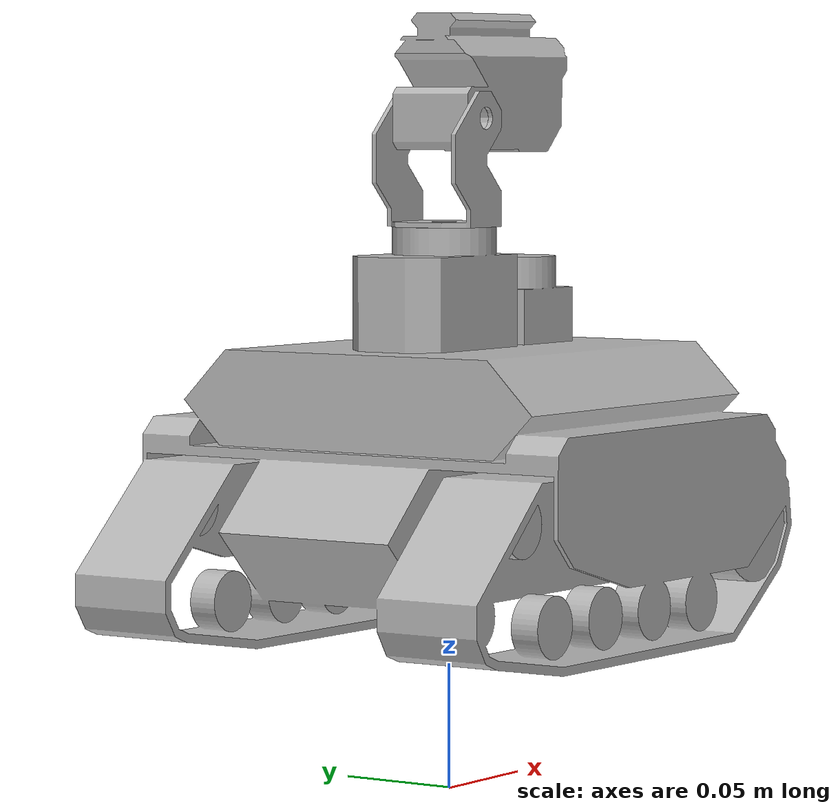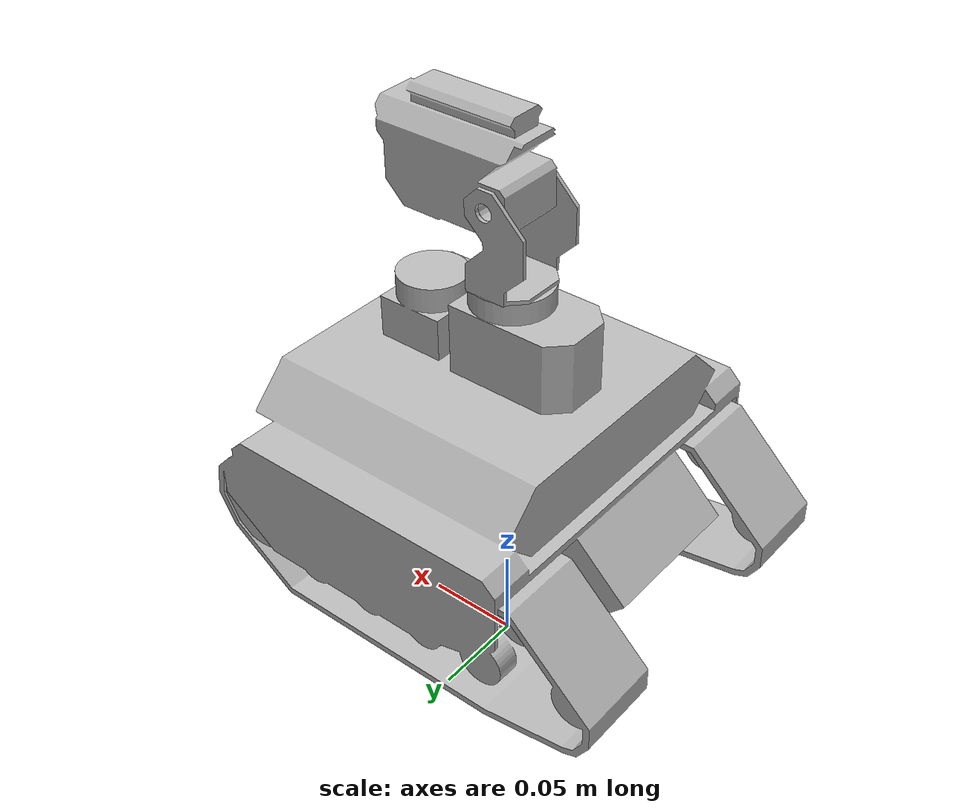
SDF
<?xml version='1.0'?>
<sdf version='1.5'>
  <model name='ugv_beast'>
   <pose>0.0 0.0 0.0 0.0 0.0 0</pose>

  <link name='base_footprint'/>

  <link name='base_link'>
    <inertial>
      <pose relative_to='base_joint'>0 0 0 0 0 0</pose>
      <mass>2.78375064359473</mass>
      <inertia>
        <ixx>0.00651567554169617</ixx>
        <ixy>-5.86655425789789E-13</ixy>
        <ixz>3.77886436056975E-05</ixz>
        <iyy>0.00933991752413667</iyy>
        <iyz>-2.53116742521487E-11</iyz>
        <izz>0.0121583506563461</izz>
       </inertia>
    </inertial>
    <visual name='base_link_visual'>
      <pose relative_to='base_joint'>0 0 0 0 0 0</pose>
      <geometry>
          <mesh>
            <scale>1 1 1</scale>
            <uri>model://ugv_description/meshes/ugv_beast/base_link.stl</uri>
          </mesh>
      </geometry>
    </visual>
    <collision name='base_link_collision'>
      <pose relative_to='base_joint'>0 0 0 0 0 0</pose>
      <geometry>
          <mesh>
            <scale>1 1 1</scale>
            <uri>model://ugv_description/meshes/ugv_beast/base_link.stl</uri>
          </mesh>
      </geometry>
    </collision>
  </link>

  <link name='base_imu_link'>
    <pose relative_to='imu_joint'>0 0 0 0 0 0</pose>
     <sensor name='ugv_imu' type='imu'>
        <always_on>true</always_on>
        <update_rate>20</update_rate>
         <imu>
          <angular_velocity>
            <x>
              <noise type='gaussian'>
                <mean>0.0</mean>
                <stddev>2e-4</stddev>
              </noise>
            </x>
            <y>
              <noise type='gaussian'>
                <mean>0.0</mean>
                <stddev>2e-4</stddev>
              </noise>
            </y>
            <z>
              <noise type='gaussian'>
                <mean>0.0</mean>
                <stddev>2e-4</stddev>
              </noise>
            </z>
          </angular_velocity>
          <linear_acceleration>
            <x>
              <noise type='gaussian'>
                <mean>0.0</mean>
                <stddev>1.7e-2</stddev>
              </noise>
            </x>
            <y>
              <noise type='gaussian'>
                <mean>0.0</mean>
                <stddev>1.7e-2</stddev>
              </noise>
            </y>
            <z>
              <noise type='gaussian'>
                <mean>0.0</mean>
                <stddev>1.7e-2</stddev>
              </noise>
            </z>
          </linear_acceleration>
        </imu>
        <topic>imu</topic>
        <gz_frame_id>base_imu_link</gz_frame_id>
      </sensor>
  </link>

  <link name='left_up_wheel_link'>
  <pose relative_to='left_up_wheel_link_joint'>0 0 0 0 -0 0</pose>
    <inertial>
     <pose>0 0.0155 0 0 -0 0</pose>
      <mass>0.207085933743005</mass>
      <inertia>
        <ixx>0.000116541923504163</ixx>
        <ixy>-1.59309191113245E-55</ixy>
        <ixz>-3.43238458333891E-37</ixz>
        <iyy>0.000170742352371108</iyy>
        <iyz>-3.6165187302327E-37</iyz>
        <izz>0.000116541923504163</izz>
       </inertia>
    </inertial>
    <visual name='left_up_wheel_link_visual'>
      <pose>0 0 0 0 -0 0</pose>
      <geometry>
          <mesh>
            <scale>1 1 1</scale>
            <uri>model://ugv_description/meshes/ugv_beast/left_up_wheel_link.stl</uri>
          </mesh>
      </geometry>
    </visual>
    <collision name='left_up_wheel_link_collision'>
      <pose>0 0 0 1.5708 -0 0</pose>
      <geometry>
          <mesh>
            <scale>1 1 1</scale>
            <uri>model://ugv_description/meshes/ugv_beast/left_up_wheel_link.stl</uri>
          </mesh>
      </geometry>
    </collision>
  </link>

  <link name='left_down_wheel_link'>
  <pose relative_to='left_down_wheel_link_joint'>0 0 0 0 -0 0</pose>
    <inertial>
      <pose>0 0.006 0 0 -0 0</pose>
      <mass>0.207085933743005</mass>
      <inertia>
        <ixx>0.000116541923504163</ixx>
        <ixy>-1.59309191113245E-55</ixy>
        <ixz>-3.43238458333891E-37</ixz>
        <iyy>0.000170742352371108</iyy>
        <iyz>-3.6165187302327E-37</iyz>
        <izz>0.000116541923504163</izz>
       </inertia>
    </inertial>
    <visual name='left_down_wheel_link_visual'>
      <pose>0 0 0 0 -0 0</pose>
      <geometry>
          <mesh>
            <scale>1 1 1</scale>
            <uri>model://ugv_description/meshes/ugv_beast/left_down_wheel_link.stl</uri>
          </mesh>
      </geometry>
    </visual>
    <collision name='left_down_wheel_link_collision'>
      <pose>0 0 0 0 -0 0</pose>
      <geometry>
          <mesh>
            <scale>1 1 1</scale>
            <uri>model://ugv_description/meshes/ugv_beast/left_down_wheel_link.stl</uri>
          </mesh>
      </geometry>
    </collision>
  </link>

  <link name='right_up_wheel_link'>
  <pose relative_to='right_up_wheel_link_joint'>0 0 0 0 -0 0</pose>
    <inertial>
      <pose>0 -0.0155 0 0 -0 0</pose>
      <mass>0.207085933743005</mass>
      <inertia>
        <ixx>0.000116541923504163</ixx>
        <ixy>-1.59309191113245E-55</ixy>
        <ixz>-3.43238458333891E-37</ixz>
        <iyy>0.000170742352371108</iyy>
        <iyz>-3.6165187302327E-37</iyz>
        <izz>0.000116541923504163</izz>
       </inertia>
    </inertial>
    <visual name='right_up_wheel_link_visual'>
      <pose>0 0 0 0 -0 0</pose>
      <geometry>
          <mesh>
            <scale>1 1 1</scale>
            <uri>model://ugv_description/meshes/ugv_beast/right_up_wheel_link.stl</uri>
          </mesh>
      </geometry>
    </visual>
    <collision name='right_up_wheel_link_collision'>
      <pose>0 0 0 0 -0 0</pose>
      <geometry>
          <mesh>
            <scale>1 1 1</scale>
            <uri>model://ugv_description/meshes/ugv_beast/right_up_wheel_link.stl</uri>
          </mesh>
      </geometry>
    </collision>
  </link>

  <link name='right_down_wheel_link'>
  <pose relative_to='right_down_wheel_link_joint'>0 0 0 0 -0 0</pose>
    <inertial>
      <pose>0 -0.006 0 0 -0 0</pose>
      <mass>0.207085933743005</mass>
      <inertia>
        <ixx>0.000116541923504163</ixx>
        <ixy>-1.59309191113245E-55</ixy>
        <ixz>-3.43238458333891E-37</ixz>
        <iyy>0.000170742352371108</iyy>
        <iyz>-3.6165187302327E-37</iyz>
        <izz>0.000116541923504163</izz>
        </inertia>
    </inertial>
    <visual name='right_down_wheel_link_visual'>
      <pose>0 0 0 0 -0 0</pose>
      <geometry>
          <mesh>
            <scale>1 1 1</scale>
            <uri>model://ugv_description/meshes/ugv_beast/right_down_wheel_link.stl</uri>
          </mesh>
      </geometry>
    </visual>
    <collision name='right_down_wheel_link_collision'>
      <pose>0 0 0 0 -0 0</pose>
      <geometry>
          <mesh>
            <scale>1 1 1</scale>
            <uri>model://ugv_description/meshes/ugv_beast/right_down_wheel_link.stl</uri>
          </mesh>
      </geometry>
    </collision>
  </link>

  <link name='3d_camera_link'>
  <pose relative_to='3d_camera_link_joint'>0 0 0 0 -0 0</pose>
    <inertial>
      <pose>0 0 0 0 -0 0</pose>
      <mass>0.043316</mass>
      <inertia>
        <ixx>3.27216283333333E-05</ixx>
        <ixy>1.12259284465067E-22</ixy>
        <ixz>-1.19114008207636E-22</ixz>
        <iyy>3.87317233333333E-06</iyy>
        <iyz>-2.37303626261453E-22</iyz>
        <izz>3.09348433333333E-05</izz>
       </inertia>
    </inertial>
    <visual name='3d_camera_link_visual'>
      <pose>0 0 0 0 -0 0</pose>
      <geometry>
          <mesh>
            <scale>1 1 1</scale>
            <uri>model://ugv_description/meshes/ugv_beast/3d_camera_link.stl</uri>
          </mesh>
      </geometry>
    </visual>
    <collision name='3d_camera_link_collision'>
      <pose>0 0 0 0 -0 0</pose>
      <geometry>
          <mesh>
            <scale>1 1 1</scale>
            <uri>model://ugv_description/meshes/ugv_beast/3d_camera_link.stl</uri>
          </mesh>
      </geometry>
    </collision>

      <sensor name="camera" type="rgbd_camera">
        <pose>0 0 0 0 -0 0</pose>
        <always_on>true</always_on>
        <visualize>true</visualize>
        <update_rate>30</update_rate>
        <topic>camera</topic>
        <gz_frame_id>3d_camera_link</gz_frame_id>
        <camera name="intel_realsense_r200">
          <horizontal_fov>1.02974</horizontal_fov>
          <image>
            <width>640</width>
            <height>480</height>
            <format>R8G8B8</format>
          </image>
          <clip>
            <near>0.02</near>
            <far>300</far>
          </clip>
          <noise>
            <type>gaussian</type>
            <mean>0.0</mean>
            <stddev>0.007</stddev>
          </noise>
        </camera>
      </sensor>
  </link>

  <link name='base_lidar_link'>
  <pose relative_to='base_lidar_link_joint'>0 0 0 0 -0 0</pose>
    <inertial>
      <pose>0 0 0 0 -0 0</pose>
      <mass>0.0418000091653573</mass>
      <inertia>
        <ixx>8.26853377699878E-06</ixx>
        <ixy>-2.32283058129169E-22</ixy>
        <ixz>-3.51417304718746E-22</ixz>
        <iyy>8.26853377699876E-06</iyy>
        <iyz>2.66754484573224E-23</iyz>
        <izz>8.32524607487378E-06</izz>
       </inertia>
    </inertial>
    <visual name='base_lidar_link_visual'>
      <pose>0 0 0 0 -0 0</pose>
      <geometry>
          <mesh>
            <scale>1 1 1</scale>
            <uri>model://ugv_description/meshes/ugv_beast/base_lidar_link.stl</uri>
          </mesh>
      </geometry>
    </visual>
    <collision name='base_lidar_link_collision'>
      <pose>0 0 0 0 -0 0</pose>
      <geometry>
          <mesh>
            <scale>1 1 1</scale>
            <uri>model://ugv_description/meshes/ugv_beast/base_lidar_link.stl</uri>
          </mesh>
      </geometry>
    </collision>

    <sensor name='hls_lfcd_lds' type='gpu_lidar'>
        <always_on>true</always_on>
        <visualize>true</visualize>
        <pose>0 0 0.04 0 -0 0</pose>
        <update_rate>10</update_rate>
        <topic>scan</topic>
        <gz_frame_id>base_lidar_link</gz_frame_id>
        <lidar>
          <scan>
            <horizontal>
              <samples>360</samples>
              <resolution>1.000000</resolution>
              <min_angle>0.000000</min_angle>
              <max_angle>6.280000</max_angle>
            </horizontal>
          </scan>
          <range>
            <min>0.160000</min>
            <max>3.5</max>
            <resolution>0.015000</resolution>
          </range>
          <noise>
            <type>gaussian</type>
            <mean>0.0</mean>
            <stddev>0.01</stddev>
          </noise>
        </lidar>
      </sensor>
  </link>

  <link name='pt_base_link'>
  <pose relative_to='pt_base_link_joint'>0 0 0 0 -0 0</pose>
    <inertial>
      <pose>0 0 0 0 -0 0</pose>
      <mass>0.109518186442022</mass>
      <inertia>
        <ixx>3.30168147078049E-05</ixx>
        <ixy>-2.724587071518E-18</ixy>
        <ixz>-2.93137934608679E-06</ixz>
        <iyy>5.1580984319637E-05</iyy>
        <iyz>-6.32568066032632E-18</iyz>
        <izz>4.86101329827052E-05</izz>
       </inertia>
    </inertial>
    <visual name='pt_base_link_visual'>
      <pose>0 0 0 0 -0 0</pose>
      <geometry>
          <mesh>
            <scale>1 1 1</scale>
            <uri>model://ugv_description/meshes/ugv_beast/pt_base_link.stl</uri>
          </mesh>
      </geometry>
    </visual>
    <collision name='pt_base_link_collision'>
      <pose>0 0 0 0 -0 0</pose>
      <geometry>
          <mesh>
            <scale>1 1 1</scale>
            <uri>model://ugv_description/meshes/ugv_beast/pt_base_link.stl</uri>
          </mesh>
      </geometry>
    </collision>
  </link>

  <link name='pt_link1'>
  <pose relative_to='pt_base_link_to_pt_link1'>0 0 0 0 -0 0</pose>
    <inertial>
    <pose>-0.003381 0 0.01761 0 -0 0</pose>
      <mass>0.00710917409663916</mass>
      <inertia>
        <ixx>3.89716322571471E-06</ixx>
        <ixy>-3.20607036006508E-19</ixy>
        <ixz>2.32919366130509E-07</ixz>
        <iyy>2.4980668051168E-06</iyy>
        <iyz>-2.87650001968868E-19</iyz>
        <izz>2.60402792588347E-06</izz>
      </inertia>
    </inertial>
    <visual name='pt_link1_visual'>
      <pose>0 0 0 0 -0 0</pose>
      <geometry>
          <mesh>
            <scale>1 1 1</scale>
            <uri>model://ugv_description/meshes/ugv_beast/pt_link1.stl</uri>
          </mesh>
      </geometry>
    </visual>
    <collision name='pt_link1_collision'>
      <pose>0 0 0 0 -0 0</pose>
      <geometry>
          <mesh>
            <scale>1 1 1</scale>
            <uri>model://ugv_description/meshes/ugv_beast/pt_link1.stl</uri>
          </mesh>
      </geometry>
    </collision>
  </link>

  <link name='pt_link2'>
        <pose relative_to='pt_link1_to_pt_link2'>0 0 0 0 -0 0</pose>
        <inertial>
          <pose>0.023763 0.01126 0.02 0 -0 0</pose>
          <mass>0.103286</mass>
          <inertia>
            <ixx>3.20126e-05</ixx>
            <ixy>1.18182e-06</ixy>
            <ixz>8.05374e-13</ixz>
            <iyy>4.3875e-05</iyy>
            <iyz>-2.49463e-13</iyz>
            <izz>5.67494e-05</izz>
          </inertia>
        </inertial>
    <visual name='pt_link2_visual'>
      <pose>0 0 0 0 -0 0</pose>
      <geometry>
          <mesh>
            <scale>1 1 1</scale>
            <uri>model://ugv_description/meshes/ugv_beast/pt_link2.stl</uri>
          </mesh>
      </geometry>
    </visual>
    <collision name='pt_link2_collision'>
      <pose>0 0 0 0 -0 0</pose>
      <geometry>
          <mesh>
            <scale>1 1 1</scale>
            <uri>model://ugv_description/meshes/ugv_beast/pt_link2.stl</uri>
          </mesh>
      </geometry>
    </collision>
  </link>

  <link name='pt_camera_link'>
  <pose relative_to='pt_link2_to_pt_camera_link'>0 0 0 0 -0 0</pose>
    <inertial>
      <pose>0 0 0 0 -0 0</pose>
      <mass>0.00623651844028495</mass>
      <inertia>
        <ixx>5.11295942352593E-07</ixx>
        <ixy>3.46495200123478E-22</ixy>
        <ixz>-4.00917493406375E-08</ixz>
        <iyy>3.99078324787848E-07</iyy>
        <iyz>1.31404415819798E-22</iyz>
        <izz>4.02518684222241E-07</izz>
      </inertia>
    </inertial>
    <visual name='pt_camera_link_visual'>
      <pose>0 0 0 0 -0 0</pose>
      <geometry>
          <mesh>
            <scale>1 1 1</scale>
            <uri>model://ugv_description/meshes/ugv_beast/pt_camera_link.stl</uri>
          </mesh>
      </geometry>
    </visual>
    <collision name='pt_camera_link_collision'>
      <pose>0 0 0 0 -0 0</pose>
      <geometry>
          <mesh>
            <scale>1 1 1</scale>
            <uri>model://ugv_description/meshes/ugv_beast/pt_camera_link.stl</uri>
          </mesh>
      </geometry>
    </collision>
      <sensor name="pt_camera" type="camera">
        <pose>0 0 0 0 -0 0</pose>
        <always_on>true</always_on>
        <visualize>true</visualize>
        <update_rate>30</update_rate>
        <topic>pt_camera</topic>
        <gz_frame_id>pt_camera_link</gz_frame_id>
        <camera name="intel_realsense_r200">
          <horizontal_fov>1.02974</horizontal_fov>
          <image>
            <width>640</width>
            <height>480</height>
            <format>R8G8B8</format>
          </image>
          <clip>
            <near>0.02</near>
            <far>300</far>
          </clip>
          <noise>
            <type>gaussian</type>
            <mean>0.0</mean>
            <stddev>0.007</stddev>
          </noise>
        </camera>
      </sensor>
  </link>

  <joint name='base_joint' type='fixed'>
    <pose relative_to='base_footprint'>0.00046 0 0.08 0 -0 0</pose>
    <parent>base_footprint</parent>
    <child>base_link</child>
  </joint>

  <joint name='imu_joint' type='fixed'>
      <parent>base_footprint</parent>
      <child>base_imu_link</child>
      <pose relative_to='base_footprint'>0 0 0 0 0 0</pose>
  </joint>

  <joint name='left_up_wheel_link_joint' type='revolute'>
    <pose relative_to='base_footprint'>0.083678 0.061911 0.106149 0 -0 0</pose>
      <parent>base_footprint</parent>
    <child>left_up_wheel_link</child>
       <axis>
        <xyz>0 0 -1</xyz>
      </axis>
  </joint>

  <joint name='left_down_wheel_link_joint' type='revolute'>
    <pose relative_to='base_footprint'>-0.071778 0.070711 0.115649 0 -0 0</pose>
      <parent>base_footprint</parent>
    <child>left_down_wheel_link</child>
       <axis>
        <xyz>0 0 -1</xyz>
      </axis>
  </joint>

  <joint name='right_up_wheel_link_joint' type='revolute'>
    <pose relative_to='base_footprint'>0.083678 -0.061911 0.106149 0 -0 0</pose>
      <parent>base_footprint</parent>
    <child>right_up_wheel_link</child>
       <axis>
        <xyz>0 0 -1</xyz>
      </axis>
  </joint>

  <joint name='right_down_wheel_link_joint' type='revolute'>
    <pose relative_to='base_footprint'>-0.071778 -0.070711 0.115649 0 -0 0</pose>
      <parent>base_footprint</parent>
    <child>right_down_wheel_link</child>
       <axis>
        <xyz>0 0 -1</xyz>
      </axis>
  </joint>

  <joint name='3d_camera_link_joint' type='fixed'>
      <pose relative_to='base_footprint'>0.070335 0 0.159256 0 -0 0</pose>
      <parent>base_footprint</parent>
      <child>3d_camera_link</child>
       <axis>
        <xyz>0 0 1</xyz>
      </axis>
  </joint>

  <joint name='base_lidar_link_joint' type='fixed'>
    <pose relative_to='base_footprint'>0.04484 0 0.177303 0 -0 0</pose>
      <parent>base_footprint</parent>
    <child>base_lidar_link</child>
       <axis>
        <xyz>0 0 1</xyz>
      </axis>
  </joint>

  <joint name='pt_base_link_joint' type='fixed'>
    <pose relative_to='base_footprint'>-0.013867 0 0.177303 0 -0 0</pose>
      <parent>base_footprint</parent>
    <child>pt_base_link</child>
       <axis>
        <xyz>0 0 1</xyz>
      </axis>
  </joint>

  <joint name='pt_base_link_to_pt_link1' type='fixed'>
    <pose relative_to='base_footprint'>-0.003716 0 0.225303 0 -0 0</pose>
      <parent>pt_base_link</parent>
    <child>pt_link1</child>
       <axis>
        <xyz>0 0 -1</xyz>
      </axis>
  </joint>

  <joint name='pt_link1_to_pt_link2' type='fixed'>
    <pose relative_to='pt_link1'>0 0.02 0.043003 1.5708 -0 0</pose>
      <parent>pt_link1</parent>
    <child>pt_link2</child>
       <axis>
        <xyz>0 -1 0</xyz>
      </axis>
  </joint>

  <joint name='pt_link2_to_pt_camera_link' type='fixed'>
    <pose relative_to='pt_link2'>0.047686 -0.000569 0.02 -1.5708 0 0</pose>
      <parent>pt_link2</parent>
    <child>pt_camera_link</child>
       <axis>
        <xyz>0 0 1</xyz>
      </axis>
  </joint>

     <static>0</static>

    <!-- Holonomic base: VelocityControl applies cmd_vel to the base,
         OdometryPublisher emits odom + odom->base_footprint TF. -->
    <plugin filename="gz-sim-velocity-control-system"
            name="gz::sim::systems::VelocityControl">
      <topic>cmd_vel</topic>
    </plugin>

    <plugin filename="gz-sim-odometry-publisher-system"
            name="gz::sim::systems::OdometryPublisher">
      <dimensions>3</dimensions>
      <odom_frame>odom</odom_frame>
      <robot_base_frame>base_footprint</robot_base_frame>
      <odom_topic>odom</odom_topic>
      <tf_topic>tf</tf_topic>
      <odom_publish_frequency>20</odom_publish_frequency>
    </plugin>

    <plugin filename="gz-sim-joint-state-publisher-system"
            name="gz::sim::systems::JointStatePublisher">
      <topic>joint_states</topic>
      <update_rate>2</update_rate>
      <joint_name>left_up_wheel_link_joint</joint_name>
      <joint_name>right_up_wheel_link_joint</joint_name>
      <joint_name>left_down_wheel_link_joint</joint_name>
      <joint_name>right_down_wheel_link_joint</joint_name>
    </plugin>
  </model>
</sdf>
